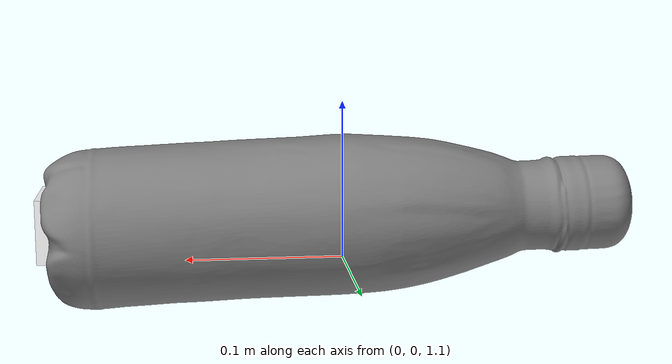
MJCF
<mujoco model="bottle_mesh_model">
    <asset>
        <!-- Define the bottle mesh -->
        <mesh name="bottle_mesh" file="../object/geomobj/models/assets/bottle.obj" scale="0.004 0.004 0.004"/>
    </asset>
    <worldbody>
        <body name="bottle_base" pos="0.0 0.0 1.125" quat="0.7071055 0 0 0.7071081">
            <!-- Free-floating joint -->
            <joint name="free_joint_blue" type="free"/>
            <!-- Single mesh geom representing the whole bottle -->
            <!-- collision mesh -->
            <geom type="mesh" mesh="bottle_mesh" contype="1" conaffinity="1" solref="0.02 1" solimp="0.9 0.95 0.001" mass="0.5"/>
            <geom name="box_geom" type="box" size="0.025 0.05 0.02" pos = "0 -0.14 0" rgba="1 1 1 1" contype="1" conaffinity="1" friction="1 0.0 0.0" mass="1.0" priority="1" solref="0.0001 1" solimp="0.9 0.95 0.01"
            />
            <!-- visual mesh -->
            <geom type="mesh" mesh="bottle_mesh" contype="0" conaffinity="0" rgba="0.2 0.6 0.9 1"/>
        </body>
    </worldbody>
</mujoco>
